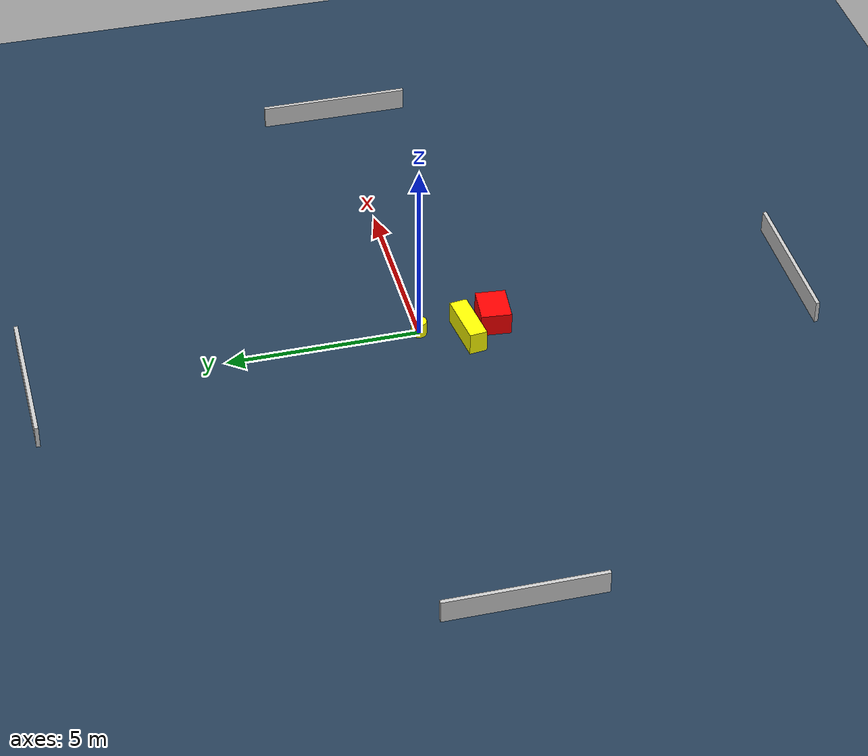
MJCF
<?xml version="1.0" ?>
<mujoco model="generated_environment">
  <option timestep="0.01" integrator="RK4" cone="elliptic"/>
  <default>
    <geom density="1"/>
  </default>
  <asset>
    <texture builtin="gradient" height="3072" name="skybox" rgb1="0.3 0.5 0.7" rgb2="0 0 0" type="skybox" width="512"/>
    <texture builtin="checker" height="300" name="groundplane" rgb1="0.2 0.3 0.4" rgb2="0.1 0.2 0.3" type="2d" width="300"/>
    <material name="groundplane" reflectance="0.2" texrepeat="5 5" texture="groundplane"/>
  </asset>
  <worldbody>
    <light dir="0 0 -1" directional="true" pos="0 0 1.5"/>
    <geom condim="3" friction="0.5 0.005 0.001" material="groundplane" name="floor" pos="0 0 0" size="0 0 0.05" type="plane"/>
    <body name="walls">
      <geom name="wall_1" condim="4" pos="-10.0 0.0 0.3" rgba="0.800000011920929 0.800000011920929 0.800000011920929 1.0" size="0.05 2.0 0.3" type="box"/>
      <geom name="wall_2" condim="4" pos="10.0 0.0 0.3" rgba="0.800000011920929 0.800000011920929 0.800000011920929 1.0" size="0.05 2.0 0.3" type="box"/>
      <geom name="wall_3" condim="4" pos="0.0 -10.0 0.3" rgba="0.800000011920929 0.800000011920929 0.800000011920929 1.0" size="2.0 0.05 0.3" type="box"/>
      <geom name="wall_4" condim="4" pos="0.0 10.0 0.3" rgba="0.800000011920929 0.800000011920929 0.800000011920929 1.0" size="2.0 0.05 0.3" type="box"/>
    </body>
    <body name="robot">
      <joint name="joint_x" type="slide" pos="0 0 0" axis="1 0 0"/>
      <joint name="joint_y" type="slide" pos="0 0 0" axis="0 1 0"/>
      <geom name="robot" type="cylinder" pos="0.0 0.0 0.2" size="0.2 0.2 0.0" mass="5.0" friction="1.0 0.005 0.0001" condim="4" rgba="1.0 1.0 0.0 1.0"/>
    </body>
    <body name="obstacle_1_movable">
      <geom name="obstacle_1_movable" condim="4" pos="-0.4025744292070123 -1.1878902199585684 0.3" euler="0 0 7.103957880050169" friction="0.0 0.005 0.001" rgba="1.0 1.0 0.0 1.0" size="0.7045480078360165 0.23147061447685954 0.3" type="box" mass="0.1"/>
      <joint type="free"/>
    </body>
    <body name="obstacle_2_static">
      <geom name="obstacle_2_static" condim="4" pos="-0.025125879734751708 -1.9501666643411362 0.3" euler="0 0 174.7002952667517" friction="0.0 0.005 0.001" rgba="1.0 0.0 0.0 1.0" size="0.5026014471208982 0.3944318882162594 0.3" type="box"/>
    </body>
  </worldbody>
  <actuator>
    <motor name="actuator_x" joint="joint_x" gear="1" ctrlrange="-1 1"/>
    <motor name="actuator_y" joint="joint_y" gear="1" ctrlrange="-1 1"/>
  </actuator>
</mujoco>
